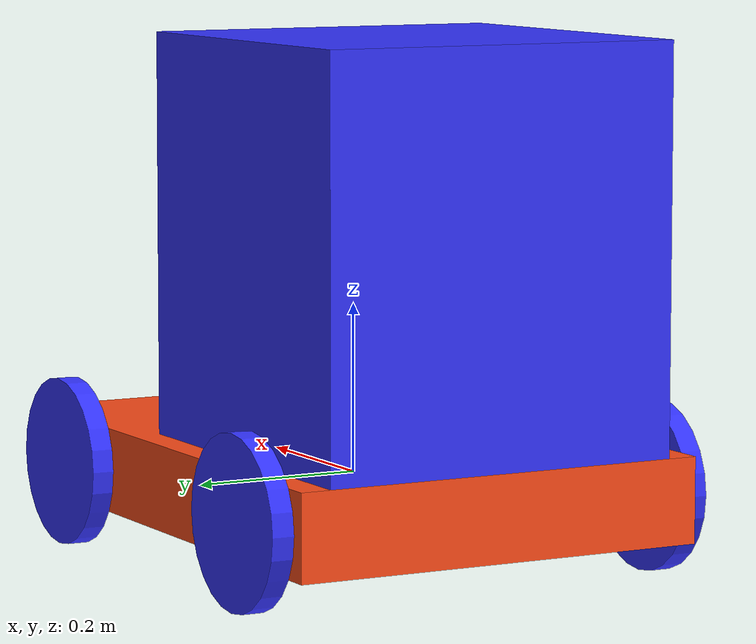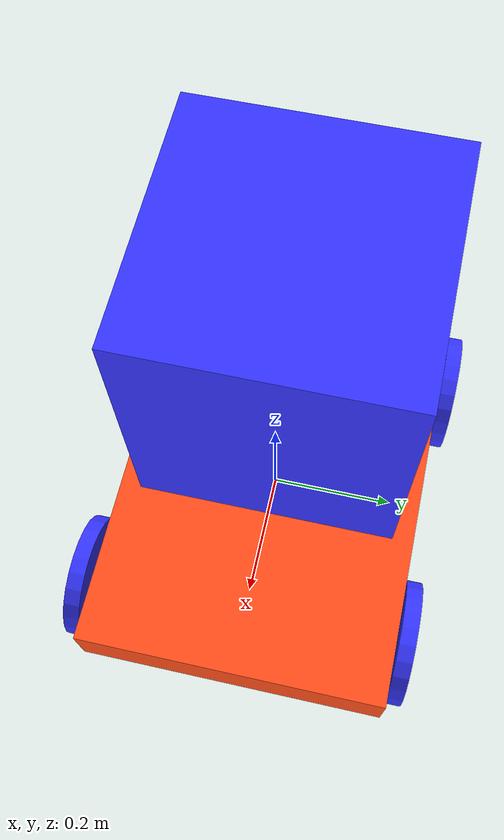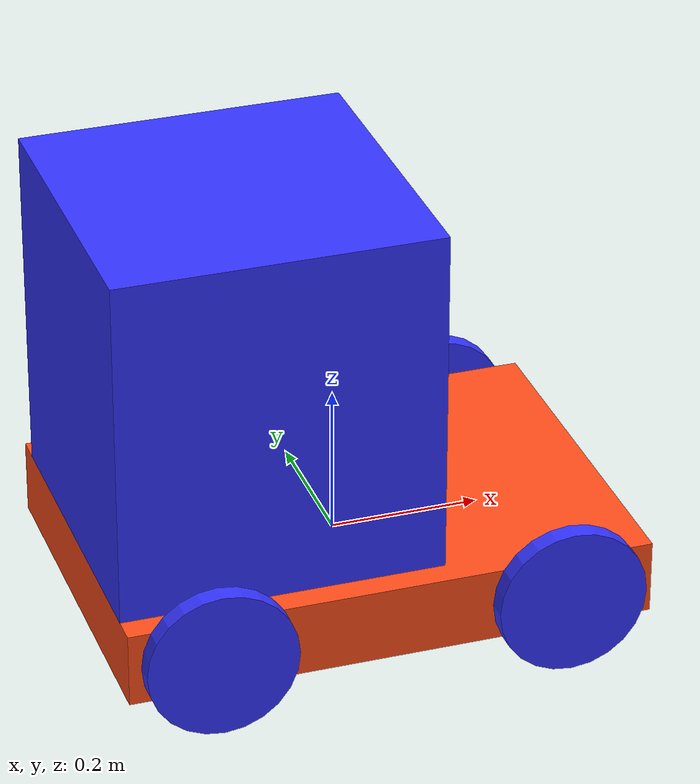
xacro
<?xml version="1.0"?>
<robot xmlns:xacro="http://www.ros.org/wiki/xacro" >

    <xacro:include filename="inertial_macros.xacro"/>

    <!-- Chassis properties -->
    <xacro:property name="chassis_length" value="0.70"/>
    <xacro:property name="chassis_width" value="0.50"/>
    <xacro:property name="chassis_height" value="0.10"/>
    <xacro:property name="chassis_mass" value="1.0"/>

    <!-- Storage properties -->
    <xacro:property name="storage_length" value="0.43"/>
    <xacro:property name="storage_width" value="0.43"/>
    <xacro:property name="storage_height" value="0.47"/>
    <xacro:property name="storage_mass" value="1.0"/>

    <!-- Wheel properties -->
    <xacro:property name="wheel_radius" value="0.1"/>
    <xacro:property name="wheel_thickness" value="0.026"/>
    <xacro:property name="wheel_mass" value="0.05"/>
    <xacro:property name="wheel_offset_x" value="${chassis_length/3}"/>
    <xacro:property name="wheel_offset_y" value="${chassis_width/2+0.013}"/>
    <xacro:property name="wheel_offset_z" value="0"/>

    <material name="white">
        <color rgba="1 1 1 1" />
    </material>

    <material name="orange">
        <color rgba="1 0.3 0.1 1"/>
    </material>

    <material name="blue">
        <color rgba="0.2 0.2 1 1"/>
    </material>

    <material name="black">
        <color rgba="0 0 0 1"/>
    </material>

    <material name="red">
        <color rgba="1 0 0 1"/>
    </material>

    <!-- BASE LINK -->

    <link name="base_link">

    </link>

    <!-- BASE_FOOTPRINT LINK -->

    <joint name="base_footprint_joint" type="fixed">
        <parent link="base_link"/>
        <child link="base_footprint"/>
        <origin xyz="0 0 0" rpy="0 0 0"/>
    </joint>

    <link name="base_footprint">
    </link>

    <!-- CHASSIS LINK -->

    <joint name="chassis_joint" type="fixed">
        <parent link="base_link"/>
        <child link="chassis"/>
        <origin xyz="${-chassis_length/2} 0 ${-wheel_radius/2}"/>
    </joint>

    <link name="chassis">
        <visual>
            <origin xyz="${chassis_length/2} 0 ${chassis_height/2}"/>
            <geometry>
                <box size="${chassis_length} ${chassis_width} ${chassis_height}"/>
            </geometry>
            <material name="orange"/>
        </visual>
        <collision>
            <origin xyz="${chassis_length/2} 0 ${chassis_height/2}"/>
            <geometry>
                <box size="${chassis_length} ${chassis_width} ${chassis_height}"/>
            </geometry>
        </collision>
        <xacro:inertial_box mass="0.5" x="${chassis_length}" y="${chassis_width}" z="${chassis_height}">
            <origin xyz="${chassis_length/2} 0 ${chassis_height/2}" rpy="0 0 0"/>
        </xacro:inertial_box>
    </link>

    <gazebo reference="chassis">
        <material>Gazebo/Orange</material>
    </gazebo>

    <!-- STORAGE BOX LINK -->
    <joint name="storage_box_joint" type="fixed">
        <parent link="chassis"/>
        <child link="storage_box"/>
        <origin xyz="0 0 0"/>
    </joint>

    <link name="storage_box">
        <visual>
            <origin xyz="${storage_length/2} 0 ${storage_height/2+chassis_height}"/>
            <geometry>
                <box size="${storage_length} ${storage_width} ${storage_height}"/>
            </geometry>
            <material name="blue"/>
        </visual>
        <collision>
            <origin xyz="${storage_length/2} 0 ${storage_height/2}"/>
            <geometry>
                <box size="${storage_length} ${storage_width} ${storage_height}"/>
            </geometry>
        </collision>
        <xacro:inertial_box mass="0.5" x="${storage_length}" y="${storage_width}" z="${storage_height}">
            <origin xyz="${storage_length/2} 0 ${storage_height/2}" rpy="0 0 0"/>
        </xacro:inertial_box>
    </link>

    <gazebo reference="storage_box">
        <material>Gazebo/Blue</material>
    </gazebo>

    <!-- LEFT REAR WHEEL LINK -->

    <joint name="left_rear_wheel_joint" type="continuous">
        <parent link="base_link"/>
        <child link="left_rear_wheel"/>
        <origin xyz="${-wheel_offset_x} ${wheel_offset_y} 0" rpy="-${pi/2} 0 0" />
        <axis xyz="0 0 1"/>
    </joint>

    <link name="left_rear_wheel">
        <visual>
            <geometry>
                <cylinder radius="${wheel_radius}" length="${wheel_thickness}"/>
            </geometry>
            <material name="blue"/>
        </visual>
        <collision>
            <geometry>
                <sphere radius="${wheel_radius}"/>
            </geometry>
        </collision>
        <xacro:inertial_cylinder mass="${wheel_mass}" length="${wheel_thickness}" radius="${wheel_radius}">
            <origin xyz="0 0 0" rpy="0 0 0"/>
        </xacro:inertial_cylinder>
    </link>

    <gazebo reference="left_rear_wheel">
        <material>Gazebo/Blue</material>
    </gazebo>

    <!-- LEFT FRONT WHEEL LINK -->
    <!-- make type="continuous" for real diff drive -->

    <joint name="left_front_wheel_joint" type="fixed">
        <parent link="base_link"/>
        <child link="left_front_wheel"/>
        <origin xyz="${wheel_offset_x} ${wheel_offset_y} 0" rpy="-${pi/2} 0 0" />
        <axis xyz="0 0 1"/>
    </joint>

    <link name="left_front_wheel">
        <visual>
            <geometry>
                <cylinder radius="${wheel_radius}" length="${wheel_thickness}"/>
            </geometry>
            <material name="blue"/>
        </visual>
        <collision>
            <geometry>
                <sphere radius="${wheel_radius}"/>
            </geometry>
        </collision>
        <xacro:inertial_cylinder mass="${wheel_mass}" length="${wheel_thickness}" radius="${wheel_radius}">
            <origin xyz="0 0 0" rpy="0 0 0"/>
        </xacro:inertial_cylinder>
    </link>

    <gazebo reference="left_front_wheel">
        <material>Gazebo/Blue</material>
        <mu1 value="0.001"/>
        <mu2 value="0.001"/>
    </gazebo>

    <!-- RIGHT REAR WHEEL LINK -->

    <joint name="right_rear_wheel_joint" type="continuous">
        <parent link="base_link"/>
        <child link="right_rear_wheel"/>
        <origin xyz="${-wheel_offset_x} ${-wheel_offset_y} 0" rpy="${pi/2} 0 0" />
        <axis xyz="0 0 -1"/>
    </joint>

    <link name="right_rear_wheel">
        <visual>
            <geometry>
                <cylinder radius="${wheel_radius}" length="${wheel_thickness}"/>
            </geometry>
            <material name="blue"/>
        </visual>
        <collision>
            <geometry>
                <sphere radius="${wheel_radius}"/>
            </geometry>
        </collision>
        <xacro:inertial_cylinder mass="${wheel_mass}" length="${wheel_thickness}" radius="${wheel_radius}">
            <origin xyz="0 0 0" rpy="0 0 0"/>
        </xacro:inertial_cylinder>
    </link>

    <gazebo reference="right_rear_wheel">
        <material>Gazebo/Blue</material>
    </gazebo>

    <!-- RIGHT FRONT WHEEL LINK -->
    <!-- make type="continuous" for real diff drive -->
    <joint name="right_front_wheel_joint" type="fixed">
        <parent link="base_link"/>
        <child link="right_front_wheel"/>
        <origin xyz="${wheel_offset_x} ${-wheel_offset_y} 0" rpy="${pi/2} 0 0" />
        <axis xyz="0 0 -1"/>
    </joint>

    <link name="right_front_wheel">
        <visual>
            <geometry>
                <cylinder radius="${wheel_radius}" length="${wheel_thickness}"/>
            </geometry>
            <material name="blue"/>
        </visual>
        <collision>
            <geometry>
                <sphere radius="${wheel_radius}"/>
            </geometry>
        </collision>
        <xacro:inertial_cylinder mass="${wheel_mass}" length="${wheel_thickness}" radius="${wheel_radius}">
            <origin xyz="0 0 0" rpy="0 0 0"/>
        </xacro:inertial_cylinder>
    </link>

    <gazebo reference="right_front_wheel">
        <material>Gazebo/Blue</material>
        <mu1 value="0.001"/>
        <mu2 value="0.001"/>
    </gazebo>
</robot>
